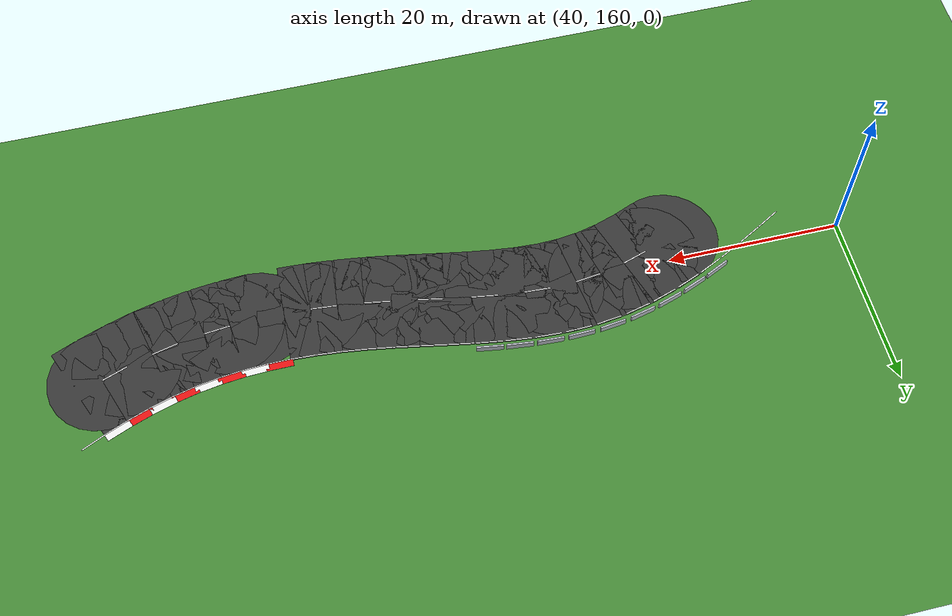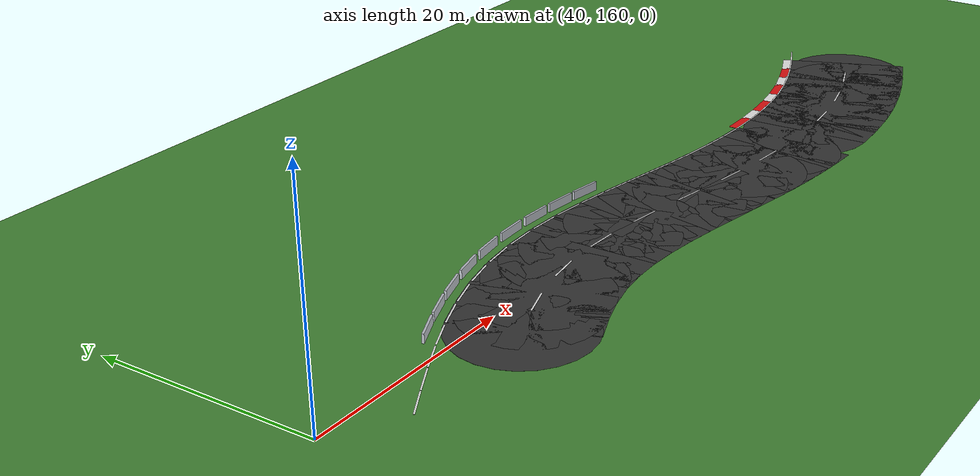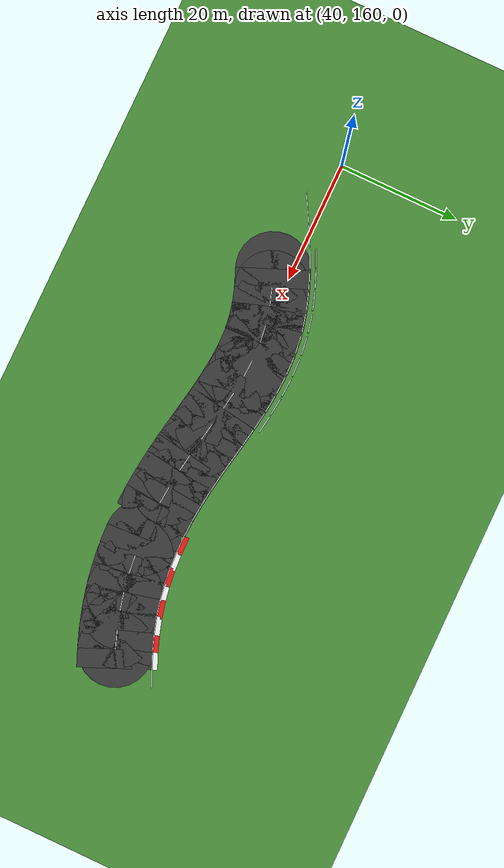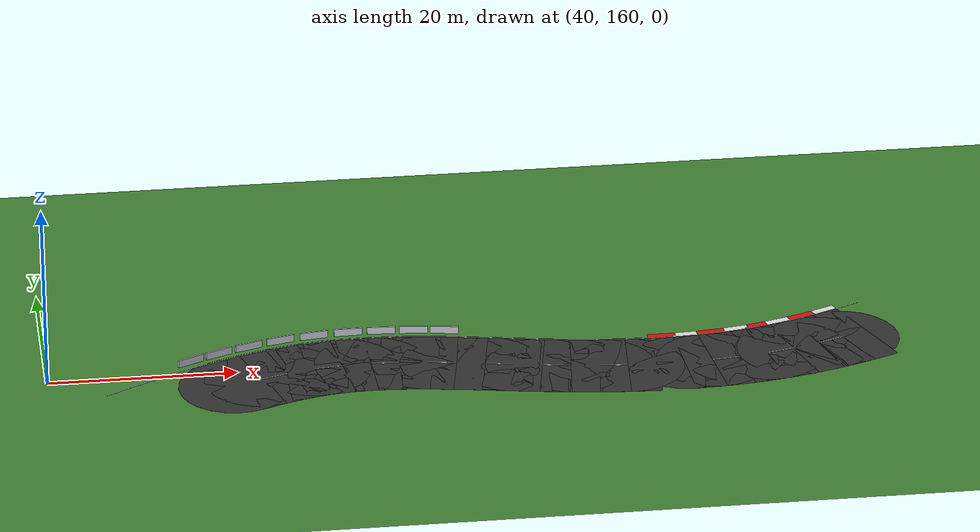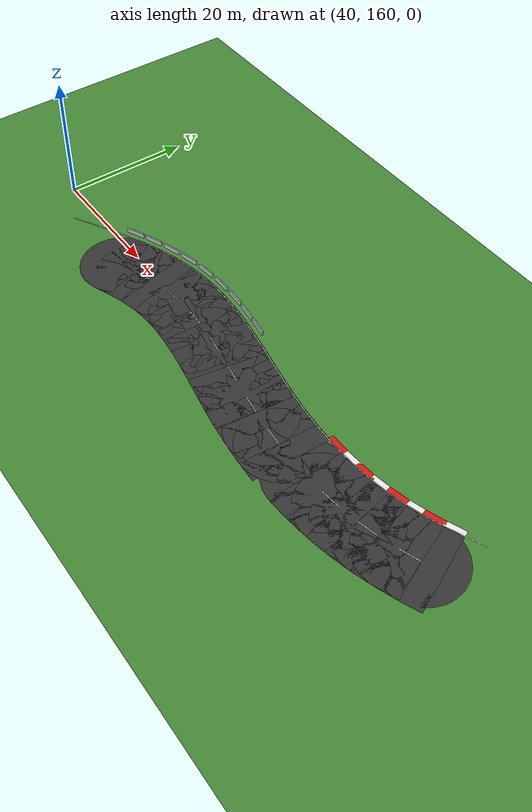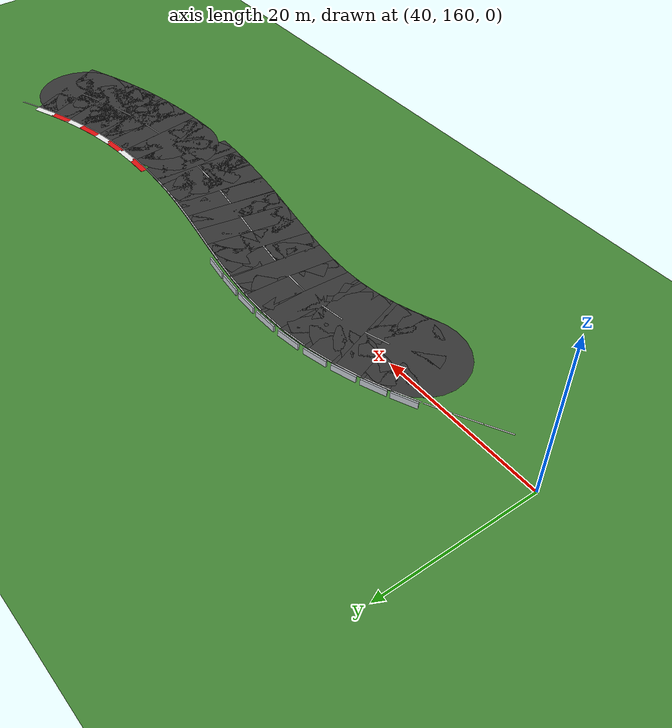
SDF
<sdf version="1.6">
 <world name="sem_silesia_ring_2026">
  <model name="ground_plane">
   <static>true</static>
   <link name="link">
    <collision name="collision">
     <geometry><plane><normal>0 0 1</normal><size>1200 1200</size></plane></geometry>
     <surface><friction><ode><mu>0.6</mu><mu2>0.6</mu2></ode></friction></surface>
    </collision>
    <visual name="visual">
     <geometry><plane><normal>0 0 1</normal><size>1200 1200</size></plane></geometry>
     <material><ambient>0.28 0.55 0.22 1</ambient><diffuse>0.28 0.55 0.22 1</diffuse></material>
    </visual>
   </link>
  </model>
  <model name="wl_R_s274">
   <static>true</static>
   <pose>125.9632 167.1755 0.0070 0 0 -2.7055</pose>
   <link name="link">
    <visual name="v">
     <geometry><box><size>3.0024 0.1500 0.0080</size></box></geometry>
     <material><ambient>0.95 0.95 0.95 1</ambient><diffuse>0.95 0.95 0.95 1</diffuse></material>
    </visual>
   </link>
  </model>
  <model name="road_s275">
   <static>true</static>
   <pose>125.6892 160.6582 0.0030 0 0 -2.7444</pose>
   <link name="link">
    <visual name="v">
     <geometry><box><size>3.0023 12.0000 0.0060</size></box></geometry>
     <material><ambient>0.22 0.22 0.22 1</ambient><diffuse>0.22 0.22 0.22 1</diffuse></material>
    </visual>
    <collision name="c">
     <geometry><box><size>3.0023 12.0000 0.0060</size></box></geometry>
     <surface><friction><ode><mu>0.9</mu><mu2>0.9</mu2></ode></friction></surface>
    </collision>
   </link>
  </model>
  <model name="wl_R_s275">
   <static>true</static>
   <pose>123.4264 166.0529 0.0070 0 0 -2.7444</pose>
   <link name="link">
    <visual name="v">
     <geometry><box><size>3.0023 0.1500 0.0080</size></box></geometry>
     <material><ambient>0.95 0.95 0.95 1</ambient><diffuse>0.95 0.95 0.95 1</diffuse></material>
    </visual>
   </link>
  </model>
  <model name="kerb_R_275">
   <static>true</static>
   <pose>123.2524 166.4679 0.0120 0 0 -2.7444</pose>
   <link name="link">
    <visual name="v">
     <geometry><box><size>3.0023 0.8000 0.0160</size></box></geometry>
     <material><ambient>0.95 0.95 0.95 1</ambient><diffuse>0.95 0.95 0.95 1</diffuse></material>
    </visual>
   </link>
  </model>
  <model name="road_s276">
   <static>true</static>
   <pose>122.8952 159.5615 0.0030 0 0 -2.7906</pose>
   <link name="link">
    <visual name="v">
     <geometry><box><size>3.0022 12.0000 0.0060</size></box></geometry>
     <material><ambient>0.22 0.22 0.22 1</ambient><diffuse>0.22 0.22 0.22 1</diffuse></material>
    </visual>
    <collision name="c">
     <geometry><box><size>3.0022 12.0000 0.0060</size></box></geometry>
     <surface><friction><ode><mu>0.9</mu><mu2>0.9</mu2></ode></friction></surface>
    </collision>
   </link>
  </model>
  <model name="road_jnt276">
   <static>true</static>
   <pose>124.3048 160.0776 0.0030 0 0 0</pose>
   <link name="link">
    <visual name="v">
     <geometry><cylinder><radius>6.0000</radius><length>0.0060</length></cylinder></geometry>
     <material><ambient>0.22 0.22 0.22 1</ambient><diffuse>0.22 0.22 0.22 1</diffuse></material>
    </visual>
    <collision name="c">
     <geometry><cylinder><radius>6.0000</radius><length>0.0060</length></cylinder></geometry>
     <surface><friction><ode><mu>0.9</mu><mu2>0.9</mu2></ode></friction></surface>
    </collision>
   </link>
  </model>
  <model name="wl_R_s276">
   <static>true</static>
   <pose>120.8838 165.0548 0.0070 0 0 -2.7906</pose>
   <link name="link">
    <visual name="v">
     <geometry><box><size>3.0022 0.1500 0.0080</size></box></geometry>
     <material><ambient>0.95 0.95 0.95 1</ambient><diffuse>0.95 0.95 0.95 1</diffuse></material>
    </visual>
   </link>
  </model>
  <model name="cd_s276">
   <static>true</static>
   <pose>122.8952 159.5615 0.0070 0 0 -2.7906</pose>
   <link name="link">
    <visual name="v">
     <geometry><box><size>3.0022 0.1500 0.0080</size></box></geometry>
     <material><ambient>0.95 0.95 0.95 1</ambient><diffuse>0.95 0.95 0.95 1</diffuse></material>
    </visual>
   </link>
  </model>
  <model name="kerb_R_276">
   <static>true</static>
   <pose>120.7291 165.4773 0.0120 0 0 -2.7906</pose>
   <link name="link">
    <visual name="v">
     <geometry><box><size>3.0022 0.8000 0.0160</size></box></geometry>
     <material><ambient>0.92 0.08 0.08 1</ambient><diffuse>0.92 0.08 0.08 1</diffuse></material>
    </visual>
   </link>
  </model>
  <model name="road_s277">
   <static>true</static>
   <pose>120.0504 158.6058 0.0030 0 0 -2.8444</pose>
   <link name="link">
    <visual name="v">
     <geometry><box><size>3.0021 12.0000 0.0060</size></box></geometry>
     <material><ambient>0.22 0.22 0.22 1</ambient><diffuse>0.22 0.22 0.22 1</diffuse></material>
    </visual>
    <collision name="c">
     <geometry><box><size>3.0021 12.0000 0.0060</size></box></geometry>
     <surface><friction><ode><mu>0.9</mu><mu2>0.9</mu2></ode></friction></surface>
    </collision>
   </link>
  </model>
  <model name="road_jnt277">
   <static>true</static>
   <pose>121.4857 159.0453 0.0030 0 0 0</pose>
   <link name="link">
    <visual name="v">
     <geometry><cylinder><radius>6.0000</radius><length>0.0060</length></cylinder></geometry>
     <material><ambient>0.22 0.22 0.22 1</ambient><diffuse>0.22 0.22 0.22 1</diffuse></material>
    </visual>
    <collision name="c">
     <geometry><cylinder><radius>6.0000</radius><length>0.0060</length></cylinder></geometry>
     <surface><friction><ode><mu>0.9</mu><mu2>0.9</mu2></ode></friction></surface>
    </collision>
   </link>
  </model>
  <model name="wl_R_s277">
   <static>true</static>
   <pose>118.3374 164.1994 0.0070 0 0 -2.8444</pose>
   <link name="link">
    <visual name="v">
     <geometry><box><size>3.0021 0.1500 0.0080</size></box></geometry>
     <material><ambient>0.95 0.95 0.95 1</ambient><diffuse>0.95 0.95 0.95 1</diffuse></material>
    </visual>
   </link>
  </model>
  <model name="kerb_R_277">
   <static>true</static>
   <pose>118.2057 164.6297 0.0120 0 0 -2.8444</pose>
   <link name="link">
    <visual name="v">
     <geometry><box><size>3.0021 0.8000 0.0160</size></box></geometry>
     <material><ambient>0.95 0.95 0.95 1</ambient><diffuse>0.95 0.95 0.95 1</diffuse></material>
    </visual>
   </link>
  </model>
  <model name="road_s278">
   <static>true</static>
   <pose>117.1555 157.8162 0.0030 0 0 -2.9062</pose>
   <link name="link">
    <visual name="v">
     <geometry><box><size>3.0020 12.0000 0.0060</size></box></geometry>
     <material><ambient>0.22 0.22 0.22 1</ambient><diffuse>0.22 0.22 0.22 1</diffuse></material>
    </visual>
    <collision name="c">
     <geometry><box><size>3.0020 12.0000 0.0060</size></box></geometry>
     <surface><friction><ode><mu>0.9</mu><mu2>0.9</mu2></ode></friction></surface>
    </collision>
   </link>
  </model>
  <model name="road_jnt278">
   <static>true</static>
   <pose>118.6151 158.1663 0.0030 0 0 0</pose>
   <link name="link">
    <visual name="v">
     <geometry><cylinder><radius>6.0000</radius><length>0.0060</length></cylinder></geometry>
     <material><ambient>0.22 0.22 0.22 1</ambient><diffuse>0.22 0.22 0.22 1</diffuse></material>
    </visual>
    <collision name="c">
     <geometry><cylinder><radius>6.0000</radius><length>0.0060</length></cylinder></geometry>
     <surface><friction><ode><mu>0.9</mu><mu2>0.9</mu2></ode></friction></surface>
    </collision>
   </link>
  </model>
  <model name="wl_R_s278">
   <static>true</static>
   <pose>115.7911 163.5048 0.0070 0 0 -2.9062</pose>
   <link name="link">
    <visual name="v">
     <geometry><box><size>3.0020 0.1500 0.0080</size></box></geometry>
     <material><ambient>0.95 0.95 0.95 1</ambient><diffuse>0.95 0.95 0.95 1</diffuse></material>
    </visual>
   </link>
  </model>
  <model name="cd_s278">
   <static>true</static>
   <pose>117.1555 157.8162 0.0070 0 0 -2.9062</pose>
   <link name="link">
    <visual name="v">
     <geometry><box><size>3.0020 0.1500 0.0080</size></box></geometry>
     <material><ambient>0.95 0.95 0.95 1</ambient><diffuse>0.95 0.95 0.95 1</diffuse></material>
    </visual>
   </link>
  </model>
  <model name="kerb_R_278">
   <static>true</static>
   <pose>115.6861 163.9424 0.0120 0 0 -2.9062</pose>
   <link name="link">
    <visual name="v">
     <geometry><box><size>3.0020 0.8000 0.0160</size></box></geometry>
     <material><ambient>0.92 0.08 0.08 1</ambient><diffuse>0.92 0.08 0.08 1</diffuse></material>
    </visual>
   </link>
  </model>
  <model name="road_s279">
   <static>true</static>
   <pose>114.2166 157.2117 0.0030 0 0 -2.9713</pose>
   <link name="link">
    <visual name="v">
     <geometry><box><size>3.0020 12.0000 0.0060</size></box></geometry>
     <material><ambient>0.22 0.22 0.22 1</ambient><diffuse>0.22 0.22 0.22 1</diffuse></material>
    </visual>
    <collision name="c">
     <geometry><box><size>3.0020 12.0000 0.0060</size></box></geometry>
     <surface><friction><ode><mu>0.9</mu><mu2>0.9</mu2></ode></friction></surface>
    </collision>
   </link>
  </model>
  <model name="road_jnt279">
   <static>true</static>
   <pose>115.6959 157.4661 0.0030 0 0 0</pose>
   <link name="link">
    <visual name="v">
     <geometry><cylinder><radius>6.0000</radius><length>0.0060</length></cylinder></geometry>
     <material><ambient>0.22 0.22 0.22 1</ambient><diffuse>0.22 0.22 0.22 1</diffuse></material>
    </visual>
    <collision name="c">
     <geometry><cylinder><radius>6.0000</radius><length>0.0060</length></cylinder></geometry>
     <surface><friction><ode><mu>0.9</mu><mu2>0.9</mu2></ode></friction></surface>
    </collision>
   </link>
  </model>
  <model name="wl_R_s279">
   <static>true</static>
   <pose>113.2252 162.9771 0.0070 0 0 -2.9713</pose>
   <link name="link">
    <visual name="v">
     <geometry><box><size>3.0020 0.1500 0.0080</size></box></geometry>
     <material><ambient>0.95 0.95 0.95 1</ambient><diffuse>0.95 0.95 0.95 1</diffuse></material>
    </visual>
   </link>
  </model>
  <model name="kerb_R_279">
   <static>true</static>
   <pose>113.1489 163.4205 0.0120 0 0 -2.9713</pose>
   <link name="link">
    <visual name="v">
     <geometry><box><size>3.0020 0.8000 0.0160</size></box></geometry>
     <material><ambient>0.95 0.95 0.95 1</ambient><diffuse>0.95 0.95 0.95 1</diffuse></material>
    </visual>
   </link>
  </model>
  <model name="road_s280">
   <static>true</static>
   <pose>111.2452 156.7941 0.0030 0 0 -3.0327</pose>
   <link name="link">
    <visual name="v">
     <geometry><box><size>3.0021 12.0000 0.0060</size></box></geometry>
     <material><ambient>0.22 0.22 0.22 1</ambient><diffuse>0.22 0.22 0.22 1</diffuse></material>
    </visual>
    <collision name="c">
     <geometry><box><size>3.0021 12.0000 0.0060</size></box></geometry>
     <surface><friction><ode><mu>0.9</mu><mu2>0.9</mu2></ode></friction></surface>
    </collision>
   </link>
  </model>
  <model name="road_jnt280">
   <static>true</static>
   <pose>112.7373 156.9573 0.0030 0 0 0</pose>
   <link name="link">
    <visual name="v">
     <geometry><cylinder><radius>6.0000</radius><length>0.0060</length></cylinder></geometry>
     <material><ambient>0.22 0.22 0.22 1</ambient><diffuse>0.22 0.22 0.22 1</diffuse></material>
    </visual>
    <collision name="c">
     <geometry><cylinder><radius>6.0000</radius><length>0.0060</length></cylinder></geometry>
     <surface><friction><ode><mu>0.9</mu><mu2>0.9</mu2></ode></friction></surface>
    </collision>
   </link>
  </model>
  <model name="wl_R_s280">
   <static>true</static>
   <pose>110.6091 162.6094 0.0070 0 0 -3.0327</pose>
   <link name="link">
    <visual name="v">
     <geometry><box><size>3.0021 0.1500 0.0080</size></box></geometry>
     <material><ambient>0.95 0.95 0.95 1</ambient><diffuse>0.95 0.95 0.95 1</diffuse></material>
    </visual>
   </link>
  </model>
  <model name="cd_s280">
   <static>true</static>
   <pose>111.2452 156.7941 0.0070 0 0 -3.0327</pose>
   <link name="link">
    <visual name="v">
     <geometry><box><size>3.0021 0.1500 0.0080</size></box></geometry>
     <material><ambient>0.95 0.95 0.95 1</ambient><diffuse>0.95 0.95 0.95 1</diffuse></material>
    </visual>
   </link>
  </model>
  <model name="kerb_R_280">
   <static>true</static>
   <pose>110.5602 163.0567 0.0120 0 0 -3.0327</pose>
   <link name="link">
    <visual name="v">
     <geometry><box><size>3.0021 0.8000 0.0160</size></box></geometry>
     <material><ambient>0.92 0.08 0.08 1</ambient><diffuse>0.92 0.08 0.08 1</diffuse></material>
    </visual>
   </link>
  </model>
  <model name="road_s281">
   <static>true</static>
   <pose>108.2540 156.5524 0.0030 0 0 -3.0893</pose>
   <link name="link">
    <visual name="v">
     <geometry><box><size>3.0022 12.0000 0.0060</size></box></geometry>
     <material><ambient>0.22 0.22 0.22 1</ambient><diffuse>0.22 0.22 0.22 1</diffuse></material>
    </visual>
    <collision name="c">
     <geometry><box><size>3.0022 12.0000 0.0060</size></box></geometry>
     <surface><friction><ode><mu>0.9</mu><mu2>0.9</mu2></ode></friction></surface>
    </collision>
   </link>
  </model>
  <model name="road_jnt281">
   <static>true</static>
   <pose>109.7530 156.6309 0.0030 0 0 0</pose>
   <link name="link">
    <visual name="v">
     <geometry><cylinder><radius>6.0000</radius><length>0.0060</length></cylinder></geometry>
     <material><ambient>0.22 0.22 0.22 1</ambient><diffuse>0.22 0.22 0.22 1</diffuse></material>
    </visual>
    <collision name="c">
     <geometry><cylinder><radius>6.0000</radius><length>0.0060</length></cylinder></geometry>
     <surface><friction><ode><mu>0.9</mu><mu2>0.9</mu2></ode></friction></surface>
    </collision>
   </link>
  </model>
  <model name="wl_R_s281">
   <static>true</static>
   <pose>107.9482 162.3944 0.0070 0 0 -3.0893</pose>
   <link name="link">
    <visual name="v">
     <geometry><box><size>3.0022 0.1500 0.0080</size></box></geometry>
     <material><ambient>0.95 0.95 0.95 1</ambient><diffuse>0.95 0.95 0.95 1</diffuse></material>
    </visual>
   </link>
  </model>
  <model name="kerb_R_281">
   <static>true</static>
   <pose>107.9247 162.8438 0.0120 0 0 -3.0893</pose>
   <link name="link">
    <visual name="v">
     <geometry><box><size>3.0022 0.8000 0.0160</size></box></geometry>
     <material><ambient>0.95 0.95 0.95 1</ambient><diffuse>0.95 0.95 0.95 1</diffuse></material>
    </visual>
   </link>
  </model>
  <model name="road_jnt282">
   <static>true</static>
   <pose>106.7549 156.4740 0.0030 0 0 0</pose>
   <link name="link">
    <visual name="v">
     <geometry><cylinder><radius>6.0000</radius><length>0.0060</length></cylinder></geometry>
     <material><ambient>0.22 0.22 0.22 1</ambient><diffuse>0.22 0.22 0.22 1</diffuse></material>
    </visual>
    <collision name="c">
     <geometry><cylinder><radius>6.0000</radius><length>0.0060</length></cylinder></geometry>
     <surface><friction><ode><mu>0.9</mu><mu2>0.9</mu2></ode></friction></surface>
    </collision>
   </link>
  </model>
  <model name="wl_R_s282">
   <static>true</static>
   <pose>105.2505 162.3231 0.0070 0 0 -3.1410</pose>
   <link name="link">
    <visual name="v">
     <geometry><box><size>3.0022 0.1500 0.0080</size></box></geometry>
     <material><ambient>0.95 0.95 0.95 1</ambient><diffuse>0.95 0.95 0.95 1</diffuse></material>
    </visual>
   </link>
  </model>
  <model name="kerb_R_282">
   <static>true</static>
   <pose>105.2503 162.7731 0.0120 0 0 -3.1410</pose>
   <link name="link">
    <visual name="v">
     <geometry><box><size>3.0022 0.8000 0.0160</size></box></geometry>
     <material><ambient>0.92 0.08 0.08 1</ambient><diffuse>0.92 0.08 0.08 1</diffuse></material>
    </visual>
   </link>
  </model>
  <model name="road_s283">
   <static>true</static>
   <pose>102.2532 156.5416 0.0030 0 0 3.0954</pose>
   <link name="link">
    <visual name="v">
     <geometry><box><size>3.0023 12.0000 0.0060</size></box></geometry>
     <material><ambient>0.22 0.22 0.22 1</ambient><diffuse>0.22 0.22 0.22 1</diffuse></material>
    </visual>
    <collision name="c">
     <geometry><box><size>3.0023 12.0000 0.0060</size></box></geometry>
     <surface><friction><ode><mu>0.9</mu><mu2>0.9</mu2></ode></friction></surface>
    </collision>
   </link>
  </model>
  <model name="wl_R_s283">
   <static>true</static>
   <pose>102.5235 162.3854 0.0070 0 0 3.0954</pose>
   <link name="link">
    <visual name="v">
     <geometry><box><size>3.0023 0.1500 0.0080</size></box></geometry>
     <material><ambient>0.95 0.95 0.95 1</ambient><diffuse>0.95 0.95 0.95 1</diffuse></material>
    </visual>
   </link>
  </model>
  <model name="road_s284">
   <static>true</static>
   <pose>99.2583 156.7433 0.0030 0 0 3.0534</pose>
   <link name="link">
    <visual name="v">
     <geometry><box><size>3.0023 12.0000 0.0060</size></box></geometry>
     <material><ambient>0.22 0.22 0.22 1</ambient><diffuse>0.22 0.22 0.22 1</diffuse></material>
    </visual>
    <collision name="c">
     <geometry><box><size>3.0023 12.0000 0.0060</size></box></geometry>
     <surface><friction><ode><mu>0.9</mu><mu2>0.9</mu2></ode></friction></surface>
    </collision>
   </link>
  </model>
  <model name="road_jnt284">
   <static>true</static>
   <pose>100.7536 156.6110 0.0030 0 0 0</pose>
   <link name="link">
    <visual name="v">
     <geometry><cylinder><radius>6.0000</radius><length>0.0060</length></cylinder></geometry>
     <material><ambient>0.22 0.22 0.22 1</ambient><diffuse>0.22 0.22 0.22 1</diffuse></material>
    </visual>
    <collision name="c">
     <geometry><cylinder><radius>6.0000</radius><length>0.0060</length></cylinder></geometry>
     <surface><friction><ode><mu>0.9</mu><mu2>0.9</mu2></ode></friction></surface>
    </collision>
   </link>
  </model>
  <model name="wl_R_s284">
   <static>true</static>
   <pose>99.7738 162.5705 0.0070 0 0 3.0534</pose>
   <link name="link">
    <visual name="v">
     <geometry><box><size>3.0023 0.1500 0.0080</size></box></geometry>
     <material><ambient>0.95 0.95 0.95 1</ambient><diffuse>0.95 0.95 0.95 1</diffuse></material>
    </visual>
   </link>
  </model>
  <model name="cd_s284">
   <static>true</static>
   <pose>99.2583 156.7433 0.0070 0 0 3.0534</pose>
   <link name="link">
    <visual name="v">
     <geometry><box><size>3.0023 0.1500 0.0080</size></box></geometry>
     <material><ambient>0.95 0.95 0.95 1</ambient><diffuse>0.95 0.95 0.95 1</diffuse></material>
    </visual>
   </link>
  </model>
  <model name="road_s285">
   <static>true</static>
   <pose>96.2736 157.0637 0.0030 0 0 3.0159</pose>
   <link name="link">
    <visual name="v">
     <geometry><box><size>3.0024 12.0000 0.0060</size></box></geometry>
     <material><ambient>0.22 0.22 0.22 1</ambient><diffuse>0.22 0.22 0.22 1</diffuse></material>
    </visual>
    <collision name="c">
     <geometry><box><size>3.0024 12.0000 0.0060</size></box></geometry>
     <surface><friction><ode><mu>0.9</mu><mu2>0.9</mu2></ode></friction></surface>
    </collision>
   </link>
  </model>
  <model name="road_jnt285">
   <static>true</static>
   <pose>97.7630 156.8756 0.0030 0 0 0</pose>
   <link name="link">
    <visual name="v">
     <geometry><cylinder><radius>6.0000</radius><length>0.0060</length></cylinder></geometry>
     <material><ambient>0.22 0.22 0.22 1</ambient><diffuse>0.22 0.22 0.22 1</diffuse></material>
    </visual>
    <collision name="c">
     <geometry><cylinder><radius>6.0000</radius><length>0.0060</length></cylinder></geometry>
     <surface><friction><ode><mu>0.9</mu><mu2>0.9</mu2></ode></friction></surface>
    </collision>
   </link>
  </model>
  <model name="wl_R_s285">
   <static>true</static>
   <pose>97.0068 162.8676 0.0070 0 0 3.0159</pose>
   <link name="link">
    <visual name="v">
     <geometry><box><size>3.0024 0.1500 0.0080</size></box></geometry>
     <material><ambient>0.95 0.95 0.95 1</ambient><diffuse>0.95 0.95 0.95 1</diffuse></material>
    </visual>
   </link>
  </model>
  <model name="road_s286">
   <static>true</static>
   <pose>93.3018 157.4883 0.0030 0 0 2.9835</pose>
   <link name="link">
    <visual name="v">
     <geometry><box><size>3.0024 12.0000 0.0060</size></box></geometry>
     <material><ambient>0.22 0.22 0.22 1</ambient><diffuse>0.22 0.22 0.22 1</diffuse></material>
    </visual>
    <collision name="c">
     <geometry><box><size>3.0024 12.0000 0.0060</size></box></geometry>
     <surface><friction><ode><mu>0.9</mu><mu2>0.9</mu2></ode></friction></surface>
    </collision>
   </link>
  </model>
  <model name="road_jnt286">
   <static>true</static>
   <pose>94.7843 157.2519 0.0030 0 0 0</pose>
   <link name="link">
    <visual name="v">
     <geometry><cylinder><radius>6.0000</radius><length>0.0060</length></cylinder></geometry>
     <material><ambient>0.22 0.22 0.22 1</ambient><diffuse>0.22 0.22 0.22 1</diffuse></material>
    </visual>
    <collision name="c">
     <geometry><cylinder><radius>6.0000</radius><length>0.0060</length></cylinder></geometry>
     <surface><friction><ode><mu>0.9</mu><mu2>0.9</mu2></ode></friction></surface>
    </collision>
   </link>
  </model>
  <model name="wl_R_s286">
   <static>true</static>
   <pose>94.2229 163.2653 0.0070 0 0 2.9835</pose>
   <link name="link">
    <visual name="v">
     <geometry><box><size>3.0024 0.1500 0.0080</size></box></geometry>
     <material><ambient>0.95 0.95 0.95 1</ambient><diffuse>0.95 0.95 0.95 1</diffuse></material>
    </visual>
   </link>
  </model>
  <model name="cd_s286">
   <static>true</static>
   <pose>93.3018 157.4883 0.0070 0 0 2.9835</pose>
   <link name="link">
    <visual name="v">
     <geometry><box><size>3.0024 0.1500 0.0080</size></box></geometry>
     <material><ambient>0.95 0.95 0.95 1</ambient><diffuse>0.95 0.95 0.95 1</diffuse></material>
    </visual>
   </link>
  </model>
  <model name="road_s287">
   <static>true</static>
   <pose>90.3420 157.9922 0.0030 0 0 2.9625</pose>
   <link name="link">
    <visual name="v">
     <geometry><box><size>3.0025 12.0000 0.0060</size></box></geometry>
     <material><ambient>0.22 0.22 0.22 1</ambient><diffuse>0.22 0.22 0.22 1</diffuse></material>
    </visual>
    <collision name="c">
     <geometry><box><size>3.0025 12.0000 0.0060</size></box></geometry>
     <surface><friction><ode><mu>0.9</mu><mu2>0.9</mu2></ode></friction></surface>
    </collision>
   </link>
  </model>
  <model name="road_jnt287">
   <static>true</static>
   <pose>91.8193 157.7247 0.0030 0 0 0</pose>
   <link name="link">
    <visual name="v">
     <geometry><cylinder><radius>6.0000</radius><length>0.0060</length></cylinder></geometry>
     <material><ambient>0.22 0.22 0.22 1</ambient><diffuse>0.22 0.22 0.22 1</diffuse></material>
    </visual>
    <collision name="c">
     <geometry><cylinder><radius>6.0000</radius><length>0.0060</length></cylinder></geometry>
     <surface><friction><ode><mu>0.9</mu><mu2>0.9</mu2></ode></friction></surface>
    </collision>
   </link>
  </model>
  <model name="wl_R_s287">
   <static>true</static>
   <pose>91.3844 163.7485 0.0070 0 0 2.9625</pose>
   <link name="link">
    <visual name="v">
     <geometry><box><size>3.0025 0.1500 0.0080</size></box></geometry>
     <material><ambient>0.95 0.95 0.95 1</ambient><diffuse>0.95 0.95 0.95 1</diffuse></material>
    </visual>
   </link>
  </model>
  <model name="road_s288">
   <static>true</static>
   <pose>87.3892 158.5359 0.0030 0 0 2.9565</pose>
   <link name="link">
    <visual name="v">
     <geometry><box><size>3.0025 12.0000 0.0060</size></box></geometry>
     <material><ambient>0.22 0.22 0.22 1</ambient><diffuse>0.22 0.22 0.22 1</diffuse></material>
    </visual>
    <collision name="c">
     <geometry><box><size>3.0025 12.0000 0.0060</size></box></geometry>
     <surface><friction><ode><mu>0.9</mu><mu2>0.9</mu2></ode></friction></surface>
    </collision>
   </link>
  </model>
  <model name="road_jnt288">
   <static>true</static>
   <pose>88.8648 158.2597 0.0030 0 0 0</pose>
   <link name="link">
    <visual name="v">
     <geometry><cylinder><radius>6.0000</radius><length>0.0060</length></cylinder></geometry>
     <material><ambient>0.22 0.22 0.22 1</ambient><diffuse>0.22 0.22 0.22 1</diffuse></material>
    </visual>
    <collision name="c">
     <geometry><cylinder><radius>6.0000</radius><length>0.0060</length></cylinder></geometry>
     <surface><friction><ode><mu>0.9</mu><mu2>0.9</mu2></ode></friction></surface>
    </collision>
   </link>
  </model>
  <model name="wl_R_s288">
   <static>true</static>
   <pose>88.4657 164.2860 0.0070 0 0 2.9565</pose>
   <link name="link">
    <visual name="v">
     <geometry><box><size>3.0025 0.1500 0.0080</size></box></geometry>
     <material><ambient>0.95 0.95 0.95 1</ambient><diffuse>0.95 0.95 0.95 1</diffuse></material>
    </visual>
   </link>
  </model>
  <model name="cd_s288">
   <static>true</static>
   <pose>87.3892 158.5359 0.0070 0 0 2.9565</pose>
   <link name="link">
    <visual name="v">
     <geometry><box><size>3.0025 0.1500 0.0080</size></box></geometry>
     <material><ambient>0.95 0.95 0.95 1</ambient><diffuse>0.95 0.95 0.95 1</diffuse></material>
    </visual>
   </link>
  </model>
  <model name="road_s289">
   <static>true</static>
   <pose>84.4355 159.0749 0.0030 0 0 2.9657</pose>
   <link name="link">
    <visual name="v">
     <geometry><box><size>3.0025 12.0000 0.0060</size></box></geometry>
     <material><ambient>0.22 0.22 0.22 1</ambient><diffuse>0.22 0.22 0.22 1</diffuse></material>
    </visual>
    <collision name="c">
     <geometry><box><size>3.0025 12.0000 0.0060</size></box></geometry>
     <surface><friction><ode><mu>0.9</mu><mu2>0.9</mu2></ode></friction></surface>
    </collision>
   </link>
  </model>
  <model name="road_jnt289">
   <static>true</static>
   <pose>85.9136 158.8122 0.0030 0 0 0</pose>
   <link name="link">
    <visual name="v">
     <geometry><cylinder><radius>6.0000</radius><length>0.0060</length></cylinder></geometry>
     <material><ambient>0.22 0.22 0.22 1</ambient><diffuse>0.22 0.22 0.22 1</diffuse></material>
    </visual>
    <collision name="c">
     <geometry><cylinder><radius>6.0000</radius><length>0.0060</length></cylinder></geometry>
     <surface><friction><ode><mu>0.9</mu><mu2>0.9</mu2></ode></friction></surface>
    </collision>
   </link>
  </model>
  <model name="wl_R_s289">
   <static>true</static>
   <pose>85.4593 164.8347 0.0070 0 0 2.9657</pose>
   <link name="link">
    <visual name="v">
     <geometry><box><size>3.0025 0.1500 0.0080</size></box></geometry>
     <material><ambient>0.95 0.95 0.95 1</ambient><diffuse>0.95 0.95 0.95 1</diffuse></material>
    </visual>
   </link>
  </model>
  <model name="road_s290">
   <static>true</static>
   <pose>81.4733 159.5636 0.0030 0 0 2.9905</pose>
   <link name="link">
    <visual name="v">
     <geometry><box><size>3.0024 12.0000 0.0060</size></box></geometry>
     <material><ambient>0.22 0.22 0.22 1</ambient><diffuse>0.22 0.22 0.22 1</diffuse></material>
    </visual>
    <collision name="c">
     <geometry><box><size>3.0024 12.0000 0.0060</size></box></geometry>
     <surface><friction><ode><mu>0.9</mu><mu2>0.9</mu2></ode></friction></surface>
    </collision>
   </link>
  </model>
  <model name="road_jnt290">
   <static>true</static>
   <pose>82.9574 159.3377 0.0030 0 0 0</pose>
   <link name="link">
    <visual name="v">
     <geometry><cylinder><radius>6.0000</radius><length>0.0060</length></cylinder></geometry>
     <material><ambient>0.22 0.22 0.22 1</ambient><diffuse>0.22 0.22 0.22 1</diffuse></material>
    </visual>
    <collision name="c">
     <geometry><cylinder><radius>6.0000</radius><length>0.0060</length></cylinder></geometry>
     <surface><friction><ode><mu>0.9</mu><mu2>0.9</mu2></ode></friction></surface>
    </collision>
   </link>
  </model>
  <model name="wl_R_s290">
   <static>true</static>
   <pose>82.3536 165.3470 0.0070 0 0 2.9905</pose>
   <link name="link">
    <visual name="v">
     <geometry><box><size>3.0024 0.1500 0.0080</size></box></geometry>
     <material><ambient>0.95 0.95 0.95 1</ambient><diffuse>0.95 0.95 0.95 1</diffuse></material>
    </visual>
   </link>
  </model>
  <model name="cd_s290">
   <static>true</static>
   <pose>81.4733 159.5636 0.0070 0 0 2.9905</pose>
   <link name="link">
    <visual name="v">
     <geometry><box><size>3.0024 0.1500 0.0080</size></box></geometry>
     <material><ambient>0.95 0.95 0.95 1</ambient><diffuse>0.95 0.95 0.95 1</diffuse></material>
    </visual>
   </link>
  </model>
  <model name="arm_outR_290">
   <static>true</static>
   <pose>82.4965 166.2862 0.4000 0 0 2.9905</pose>
   <link name="link">
    <visual name="v">
     <geometry><box><size>3.0024 0.2000 0.8000</size></box></geometry>
     <material><ambient>0.75 0.77 0.80 1</ambient><diffuse>0.75 0.77 0.80 1</diffuse></material>
    </visual>
    <collision name="c">
     <geometry><box><size>3.0024 0.2000 0.8000</size></box></geometry>
     <surface><friction><ode><mu>0.8</mu><mu2>0.8</mu2></ode></friction></surface>
    </collision>
   </link>
  </model>
  <model name="road_s291">
   <static>true</static>
   <pose>78.4970 159.9532 0.0030 0 0 3.0323</pose>
   <link name="link">
    <visual name="v">
     <geometry><box><size>3.0022 12.0000 0.0060</size></box></geometry>
     <material><ambient>0.22 0.22 0.22 1</ambient><diffuse>0.22 0.22 0.22 1</diffuse></material>
    </visual>
    <collision name="c">
     <geometry><box><size>3.0022 12.0000 0.0060</size></box></geometry>
     <surface><friction><ode><mu>0.9</mu><mu2>0.9</mu2></ode></friction></surface>
    </collision>
   </link>
  </model>
  <model name="road_jnt291">
   <static>true</static>
   <pose>79.9892 159.7895 0.0030 0 0 0</pose>
   <link name="link">
    <visual name="v">
     <geometry><cylinder><radius>6.0000</radius><length>0.0060</length></cylinder></geometry>
     <material><ambient>0.22 0.22 0.22 1</ambient><diffuse>0.22 0.22 0.22 1</diffuse></material>
    </visual>
    <collision name="c">
     <geometry><cylinder><radius>6.0000</radius><length>0.0060</length></cylinder></geometry>
     <surface><friction><ode><mu>0.9</mu><mu2>0.9</mu2></ode></friction></surface>
    </collision>
   </link>
  </model>
  <model name="wl_R_s291">
   <static>true</static>
   <pose>79.1352 165.7683 0.0070 0 0 3.0323</pose>
   <link name="link">
    <visual name="v">
     <geometry><box><size>3.0022 0.1500 0.0080</size></box></geometry>
     <material><ambient>0.95 0.95 0.95 1</ambient><diffuse>0.95 0.95 0.95 1</diffuse></material>
    </visual>
   </link>
  </model>
  <model name="arm_outR_291">
   <static>true</static>
   <pose>79.2388 166.7127 0.4000 0 0 3.0323</pose>
   <link name="link">
    <visual name="v">
     <geometry><box><size>3.0022 0.2000 0.8000</size></box></geometry>
     <material><ambient>0.75 0.77 0.80 1</ambient><diffuse>0.75 0.77 0.80 1</diffuse></material>
    </visual>
    <collision name="c">
     <geometry><box><size>3.0022 0.2000 0.8000</size></box></geometry>
     <surface><friction><ode><mu>0.8</mu><mu2>0.8</mu2></ode></friction></surface>
    </collision>
   </link>
  </model>
  <model name="road_s292">
   <static>true</static>
   <pose>75.5057 160.1908 0.0030 0 0 3.0924</pose>
   <link name="link">
    <visual name="v">
     <geometry><box><size>3.0019 12.0000 0.0060</size></box></geometry>
     <material><ambient>0.22 0.22 0.22 1</ambient><diffuse>0.22 0.22 0.22 1</diffuse></material>
    </visual>
    <collision name="c">
     <geometry><box><size>3.0019 12.0000 0.0060</size></box></geometry>
     <surface><friction><ode><mu>0.9</mu><mu2>0.9</mu2></ode></friction></surface>
    </collision>
   </link>
  </model>
  <model name="road_jnt292">
   <static>true</static>
   <pose>77.0049 160.1170 0.0030 0 0 0</pose>
   <link name="link">
    <visual name="v">
     <geometry><cylinder><radius>6.0000</radius><length>0.0060</length></cylinder></geometry>
     <material><ambient>0.22 0.22 0.22 1</ambient><diffuse>0.22 0.22 0.22 1</diffuse></material>
    </visual>
    <collision name="c">
     <geometry><cylinder><radius>6.0000</radius><length>0.0060</length></cylinder></geometry>
     <surface><friction><ode><mu>0.9</mu><mu2>0.9</mu2></ode></friction></surface>
    </collision>
   </link>
  </model>
  <model name="wl_R_s292">
   <static>true</static>
   <pose>75.7932 166.0337 0.0070 0 0 3.0924</pose>
   <link name="link">
    <visual name="v">
     <geometry><box><size>3.0019 0.1500 0.0080</size></box></geometry>
     <material><ambient>0.95 0.95 0.95 1</ambient><diffuse>0.95 0.95 0.95 1</diffuse></material>
    </visual>
   </link>
  </model>
  <model name="cd_s292">
   <static>true</static>
   <pose>75.5057 160.1908 0.0070 0 0 3.0924</pose>
   <link name="link">
    <visual name="v">
     <geometry><box><size>3.0019 0.1500 0.0080</size></box></geometry>
     <material><ambient>0.95 0.95 0.95 1</ambient><diffuse>0.95 0.95 0.95 1</diffuse></material>
    </visual>
   </link>
  </model>
  <model name="arm_outR_292">
   <static>true</static>
   <pose>75.8399 166.9825 0.4000 0 0 3.0924</pose>
   <link name="link">
    <visual name="v">
     <geometry><box><size>3.0019 0.2000 0.8000</size></box></geometry>
     <material><ambient>0.75 0.77 0.80 1</ambient><diffuse>0.75 0.77 0.80 1</diffuse></material>
    </visual>
    <collision name="c">
     <geometry><box><size>3.0019 0.2000 0.8000</size></box></geometry>
     <surface><friction><ode><mu>0.8</mu><mu2>0.8</mu2></ode></friction></surface>
    </collision>
   </link>
  </model>
  <model name="road_s293">
   <static>true</static>
   <pose>72.5065 160.2185 0.0030 0 0 -3.1109</pose>
   <link name="link">
    <visual name="v">
     <geometry><box><size>3.0015 12.0000 0.0060</size></box></geometry>
     <material><ambient>0.22 0.22 0.22 1</ambient><diffuse>0.22 0.22 0.22 1</diffuse></material>
    </visual>
    <collision name="c">
     <geometry><box><size>3.0015 12.0000 0.0060</size></box></geometry>
     <surface><friction><ode><mu>0.9</mu><mu2>0.9</mu2></ode></friction></surface>
    </collision>
   </link>
  </model>
  <model name="road_jnt293">
   <static>true</static>
   <pose>74.0066 160.2645 0.0030 0 0 0</pose>
   <link name="link">
    <visual name="v">
     <geometry><cylinder><radius>6.0000</radius><length>0.0060</length></cylinder></geometry>
     <material><ambient>0.22 0.22 0.22 1</ambient><diffuse>0.22 0.22 0.22 1</diffuse></material>
    </visual>
    <collision name="c">
     <geometry><cylinder><radius>6.0000</radius><length>0.0060</length></cylinder></geometry>
     <surface><friction><ode><mu>0.9</mu><mu2>0.9</mu2></ode></friction></surface>
    </collision>
   </link>
  </model>
  <model name="wl_R_s293">
   <static>true</static>
   <pose>72.3271 166.0657 0.0070 0 0 -3.1109</pose>
   <link name="link">
    <visual name="v">
     <geometry><box><size>3.0015 0.1500 0.0080</size></box></geometry>
     <material><ambient>0.95 0.95 0.95 1</ambient><diffuse>0.95 0.95 0.95 1</diffuse></material>
    </visual>
   </link>
  </model>
  <model name="arm_outR_293">
   <static>true</static>
   <pose>72.2979 167.0153 0.4000 0 0 -3.1109</pose>
   <link name="link">
    <visual name="v">
     <geometry><box><size>3.0015 0.2000 0.8000</size></box></geometry>
     <material><ambient>0.75 0.77 0.80 1</ambient><diffuse>0.75 0.77 0.80 1</diffuse></material>
    </visual>
    <collision name="c">
     <geometry><box><size>3.0015 0.2000 0.8000</size></box></geometry>
     <surface><friction><ode><mu>0.8</mu><mu2>0.8</mu2></ode></friction></surface>
    </collision>
   </link>
  </model>
  <model name="road_s294">
   <static>true</static>
   <pose>69.5186 159.9781 0.0030 0 0 -3.0117</pose>
   <link name="link">
    <visual name="v">
     <geometry><box><size>3.0011 12.0000 0.0060</size></box></geometry>
     <material><ambient>0.22 0.22 0.22 1</ambient><diffuse>0.22 0.22 0.22 1</diffuse></material>
    </visual>
    <collision name="c">
     <geometry><box><size>3.0011 12.0000 0.0060</size></box></geometry>
     <surface><friction><ode><mu>0.9</mu><mu2>0.9</mu2></ode></friction></surface>
    </collision>
   </link>
  </model>
  <model name="road_jnt294">
   <static>true</static>
   <pose>71.0065 160.1724 0.0030 0 0 0</pose>
   <link name="link">
    <visual name="v">
     <geometry><cylinder><radius>6.0000</radius><length>0.0060</length></cylinder></geometry>
     <material><ambient>0.22 0.22 0.22 1</ambient><diffuse>0.22 0.22 0.22 1</diffuse></material>
    </visual>
    <collision name="c">
     <geometry><cylinder><radius>6.0000</radius><length>0.0060</length></cylinder></geometry>
     <surface><friction><ode><mu>0.9</mu><mu2>0.9</mu2></ode></friction></surface>
    </collision>
   </link>
  </model>
  <model name="wl_R_s294">
   <static>true</static>
   <pose>68.7608 165.7788 0.0070 0 0 -3.0117</pose>
   <link name="link">
    <visual name="v">
     <geometry><box><size>3.0011 0.1500 0.0080</size></box></geometry>
     <material><ambient>0.95 0.95 0.95 1</ambient><diffuse>0.95 0.95 0.95 1</diffuse></material>
    </visual>
   </link>
  </model>
  <model name="cd_s294">
   <static>true</static>
   <pose>69.5186 159.9781 0.0070 0 0 -3.0117</pose>
   <link name="link">
    <visual name="v">
     <geometry><box><size>3.0011 0.1500 0.0080</size></box></geometry>
     <material><ambient>0.95 0.95 0.95 1</ambient><diffuse>0.95 0.95 0.95 1</diffuse></material>
    </visual>
   </link>
  </model>
  <model name="arm_outR_294">
   <static>true</static>
   <pose>68.6378 166.7208 0.4000 0 0 -3.0117</pose>
   <link name="link">
    <visual name="v">
     <geometry><box><size>3.0011 0.2000 0.8000</size></box></geometry>
     <material><ambient>0.75 0.77 0.80 1</ambient><diffuse>0.75 0.77 0.80 1</diffuse></material>
    </visual>
    <collision name="c">
     <geometry><box><size>3.0011 0.2000 0.8000</size></box></geometry>
     <surface><friction><ode><mu>0.8</mu><mu2>0.8</mu2></ode></friction></surface>
    </collision>
   </link>
  </model>
  <model name="road_s295">
   <static>true</static>
   <pose>66.5703 159.4379 0.0030 0 0 -2.9091</pose>
   <link name="link">
    <visual name="v">
     <geometry><box><size>3.0014 12.0000 0.0060</size></box></geometry>
     <material><ambient>0.22 0.22 0.22 1</ambient><diffuse>0.22 0.22 0.22 1</diffuse></material>
    </visual>
    <collision name="c">
     <geometry><box><size>3.0014 12.0000 0.0060</size></box></geometry>
     <surface><friction><ode><mu>0.9</mu><mu2>0.9</mu2></ode></friction></surface>
    </collision>
   </link>
  </model>
  <model name="road_jnt295">
   <static>true</static>
   <pose>68.0307 159.7837 0.0030 0 0 0</pose>
   <link name="link">
    <visual name="v">
     <geometry><cylinder><radius>6.0000</radius><length>0.0060</length></cylinder></geometry>
     <material><ambient>0.22 0.22 0.22 1</ambient><diffuse>0.22 0.22 0.22 1</diffuse></material>
    </visual>
    <collision name="c">
     <geometry><cylinder><radius>6.0000</radius><length>0.0060</length></cylinder></geometry>
     <surface><friction><ode><mu>0.9</mu><mu2>0.9</mu2></ode></friction></surface>
    </collision>
   </link>
  </model>
  <model name="wl_R_s295">
   <static>true</static>
   <pose>65.2223 165.1305 0.0070 0 0 -2.9091</pose>
   <link name="link">
    <visual name="v">
     <geometry><box><size>3.0014 0.1500 0.0080</size></box></geometry>
     <material><ambient>0.95 0.95 0.95 1</ambient><diffuse>0.95 0.95 0.95 1</diffuse></material>
    </visual>
   </link>
  </model>
  <model name="arm_outR_295">
   <static>true</static>
   <pose>65.0034 166.0549 0.4000 0 0 -2.9091</pose>
   <link name="link">
    <visual name="v">
     <geometry><box><size>3.0014 0.2000 0.8000</size></box></geometry>
     <material><ambient>0.75 0.77 0.80 1</ambient><diffuse>0.75 0.77 0.80 1</diffuse></material>
    </visual>
    <collision name="c">
     <geometry><box><size>3.0014 0.2000 0.8000</size></box></geometry>
     <surface><friction><ode><mu>0.8</mu><mu2>0.8</mu2></ode></friction></surface>
    </collision>
   </link>
  </model>
  <model name="road_s296">
   <static>true</static>
   <pose>63.6845 158.6223 0.0030 0 0 -2.8232</pose>
   <link name="link">
    <visual name="v">
     <geometry><box><size>3.0018 12.0000 0.0060</size></box></geometry>
     <material><ambient>0.22 0.22 0.22 1</ambient><diffuse>0.22 0.22 0.22 1</diffuse></material>
    </visual>
    <collision name="c">
     <geometry><box><size>3.0018 12.0000 0.0060</size></box></geometry>
     <surface><friction><ode><mu>0.9</mu><mu2>0.9</mu2></ode></friction></surface>
    </collision>
   </link>
  </model>
  <model name="road_jnt296">
   <static>true</static>
   <pose>65.1100 159.0921 0.0030 0 0 0</pose>
   <link name="link">
    <visual name="v">
     <geometry><cylinder><radius>6.0000</radius><length>0.0060</length></cylinder></geometry>
     <material><ambient>0.22 0.22 0.22 1</ambient><diffuse>0.22 0.22 0.22 1</diffuse></material>
    </visual>
    <collision name="c">
     <geometry><cylinder><radius>6.0000</radius><length>0.0060</length></cylinder></geometry>
     <surface><friction><ode><mu>0.9</mu><mu2>0.9</mu2></ode></friction></surface>
    </collision>
   </link>
  </model>
  <model name="wl_R_s296">
   <static>true</static>
   <pose>61.8534 164.1783 0.0070 0 0 -2.8232</pose>
   <link name="link">
    <visual name="v">
     <geometry><box><size>3.0018 0.1500 0.0080</size></box></geometry>
     <material><ambient>0.95 0.95 0.95 1</ambient><diffuse>0.95 0.95 0.95 1</diffuse></material>
    </visual>
   </link>
  </model>
  <model name="cd_s296">
   <static>true</static>
   <pose>63.6845 158.6223 0.0070 0 0 -2.8232</pose>
   <link name="link">
    <visual name="v">
     <geometry><box><size>3.0018 0.1500 0.0080</size></box></geometry>
     <material><ambient>0.95 0.95 0.95 1</ambient><diffuse>0.95 0.95 0.95 1</diffuse></material>
    </visual>
   </link>
  </model>
  <model name="arm_outR_296">
   <static>true</static>
   <pose>61.5560 165.0806 0.4000 0 0 -2.8232</pose>
   <link name="link">
    <visual name="v">
     <geometry><box><size>3.0018 0.2000 0.8000</size></box></geometry>
     <material><ambient>0.75 0.77 0.80 1</ambient><diffuse>0.75 0.77 0.80 1</diffuse></material>
    </visual>
    <collision name="c">
     <geometry><box><size>3.0018 0.2000 0.8000</size></box></geometry>
     <surface><friction><ode><mu>0.8</mu><mu2>0.8</mu2></ode></friction></surface>
    </collision>
   </link>
  </model>
  <model name="road_s297">
   <static>true</static>
   <pose>60.8689 157.5864 0.0030 0 0 -2.7549</pose>
   <link name="link">
    <visual name="v">
     <geometry><box><size>3.0021 12.0000 0.0060</size></box></geometry>
     <material><ambient>0.22 0.22 0.22 1</ambient><diffuse>0.22 0.22 0.22 1</diffuse></material>
    </visual>
    <collision name="c">
     <geometry><box><size>3.0021 12.0000 0.0060</size></box></geometry>
     <surface><friction><ode><mu>0.9</mu><mu2>0.9</mu2></ode></friction></surface>
    </collision>
   </link>
  </model>
  <model name="road_jnt297">
   <static>true</static>
   <pose>62.2591 158.1525 0.0030 0 0 0</pose>
   <link name="link">
    <visual name="v">
     <geometry><cylinder><radius>6.0000</radius><length>0.0060</length></cylinder></geometry>
     <material><ambient>0.22 0.22 0.22 1</ambient><diffuse>0.22 0.22 0.22 1</diffuse></material>
    </visual>
    <collision name="c">
     <geometry><cylinder><radius>6.0000</radius><length>0.0060</length></cylinder></geometry>
     <surface><friction><ode><mu>0.9</mu><mu2>0.9</mu2></ode></friction></surface>
    </collision>
   </link>
  </model>
  <model name="wl_R_s297">
   <static>true</static>
   <pose>58.6627 163.0045 0.0070 0 0 -2.7549</pose>
   <link name="link">
    <visual name="v">
     <geometry><box><size>3.0021 0.1500 0.0080</size></box></geometry>
     <material><ambient>0.95 0.95 0.95 1</ambient><diffuse>0.95 0.95 0.95 1</diffuse></material>
    </visual>
   </link>
  </model>
  <model name="arm_outR_297">
   <static>true</static>
   <pose>58.3045 163.8843 0.4000 0 0 -2.7549</pose>
   <link name="link">
    <visual name="v">
     <geometry><box><size>3.0021 0.2000 0.8000</size></box></geometry>
     <material><ambient>0.75 0.77 0.80 1</ambient><diffuse>0.75 0.77 0.80 1</diffuse></material>
    </visual>
    <collision name="c">
     <geometry><box><size>3.0021 0.2000 0.8000</size></box></geometry>
     <surface><friction><ode><mu>0.8</mu><mu2>0.8</mu2></ode></friction></surface>
    </collision>
   </link>
  </model>
  <model name="road_jnt298">
   <static>true</static>
   <pose>59.4786 157.0203 0.0030 0 0 0</pose>
   <link name="link">
    <visual name="v">
     <geometry><cylinder><radius>6.0000</radius><length>0.0060</length></cylinder></geometry>
     <material><ambient>0.22 0.22 0.22 1</ambient><diffuse>0.22 0.22 0.22 1</diffuse></material>
    </visual>
    <collision name="c">
     <geometry><cylinder><radius>6.0000</radius><length>0.0060</length></cylinder></geometry>
     <surface><friction><ode><mu>0.9</mu><mu2>0.9</mu2></ode></friction></surface>
    </collision>
   </link>
  </model>
  <model name="wl_R_s298">
   <static>true</static>
   <pose>55.6331 161.6774 0.0070 0 0 -2.7025</pose>
   <link name="link">
    <visual name="v">
     <geometry><box><size>3.0023 0.1500 0.0080</size></box></geometry>
     <material><ambient>0.95 0.95 0.95 1</ambient><diffuse>0.95 0.95 0.95 1</diffuse></material>
    </visual>
   </link>
  </model>
  <model name="arm_outR_298">
   <static>true</static>
   <pose>55.2293 162.5373 0.4000 0 0 -2.7025</pose>
   <link name="link">
    <visual name="v">
     <geometry><box><size>3.0023 0.2000 0.8000</size></box></geometry>
     <material><ambient>0.75 0.77 0.80 1</ambient><diffuse>0.75 0.77 0.80 1</diffuse></material>
    </visual>
    <collision name="c">
     <geometry><box><size>3.0023 0.2000 0.8000</size></box></geometry>
     <surface><friction><ode><mu>0.8</mu><mu2>0.8</mu2></ode></friction></surface>
    </collision>
   </link>
  </model>
  <model name="wl_R_s299">
   <static>true</static>
   <pose>52.7408 160.2512 0.0070 0 0 -2.6644</pose>
   <link name="link">
    <visual name="v">
     <geometry><box><size>3.0024 0.1500 0.0080</size></box></geometry>
     <material><ambient>0.95 0.95 0.95 1</ambient><diffuse>0.95 0.95 0.95 1</diffuse></material>
    </visual>
   </link>
  </model>
  <model name="wl_R_s300">
   <static>true</static>
   <pose>49.9613 158.7693 0.0070 0 0 -2.6392</pose>
   <link name="link">
    <visual name="v">
     <geometry><box><size>3.0025 0.1500 0.0080</size></box></geometry>
     <material><ambient>0.95 0.95 0.95 1</ambient><diffuse>0.95 0.95 0.95 1</diffuse></material>
    </visual>
   </link>
  </model>
  <model name="wl_R_s301">
   <static>true</static>
   <pose>47.2700 157.2665 0.0070 0 0 -2.6255</pose>
   <link name="link">
    <visual name="v">
     <geometry><box><size>3.0025 0.1500 0.0080</size></box></geometry>
     <material><ambient>0.95 0.95 0.95 1</ambient><diffuse>0.95 0.95 0.95 1</diffuse></material>
    </visual>
   </link>
  </model>
 </world>
</sdf>
